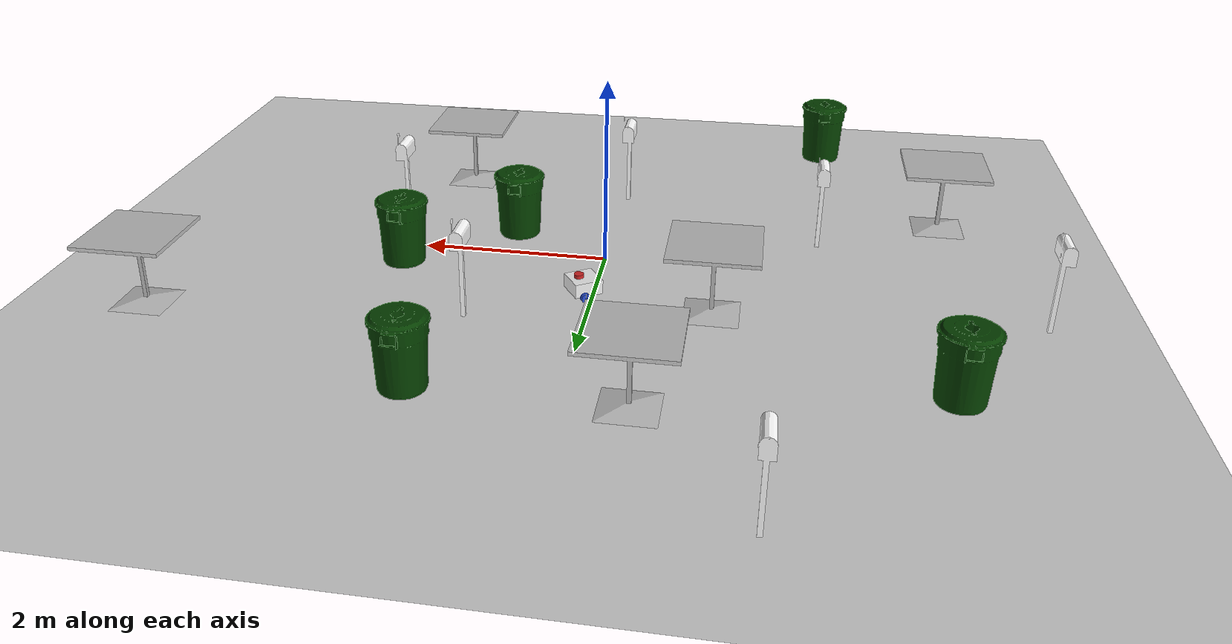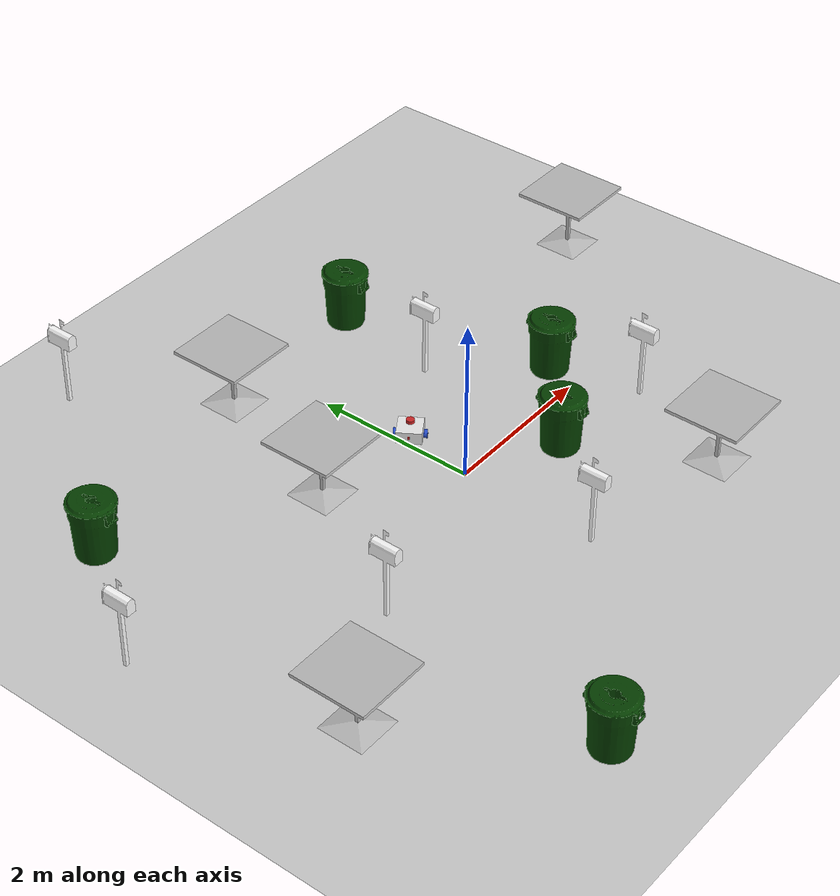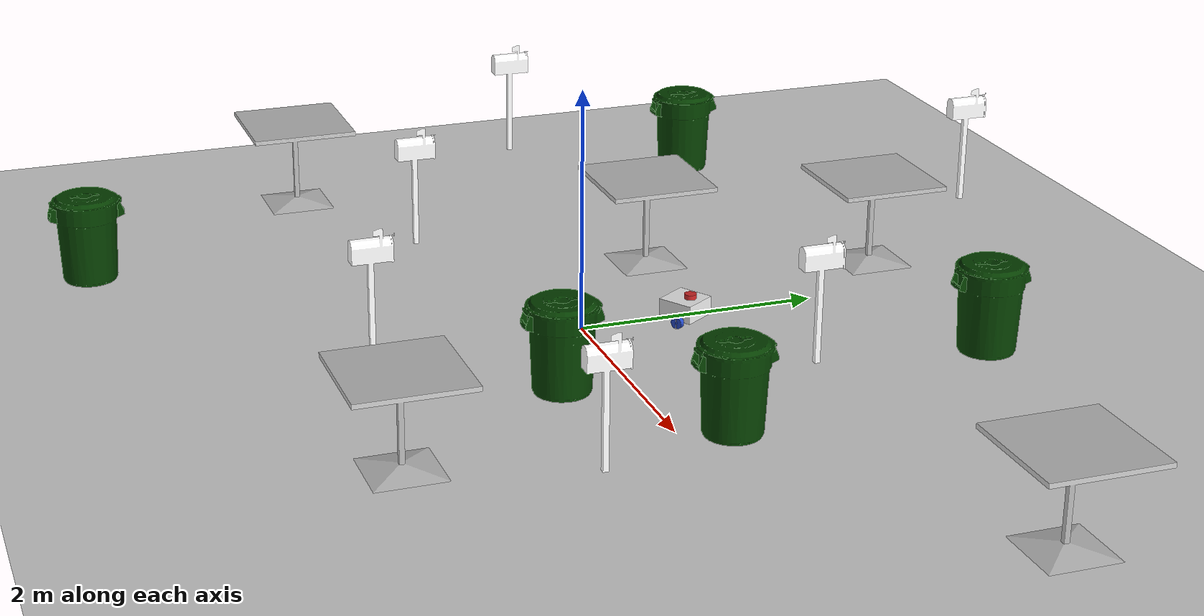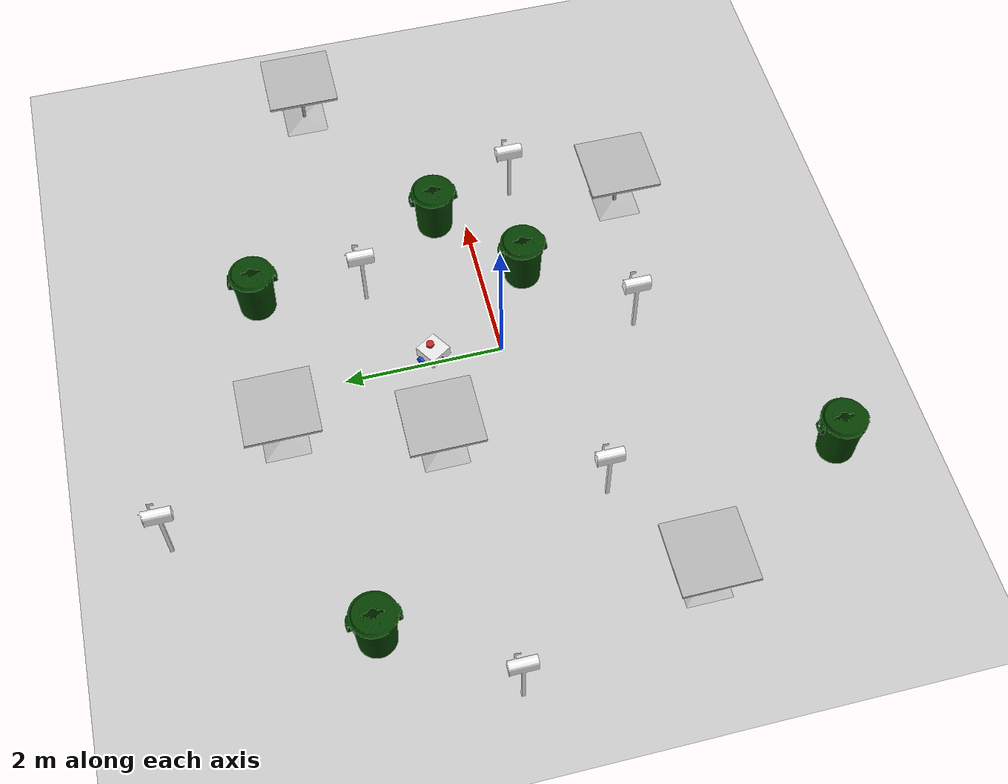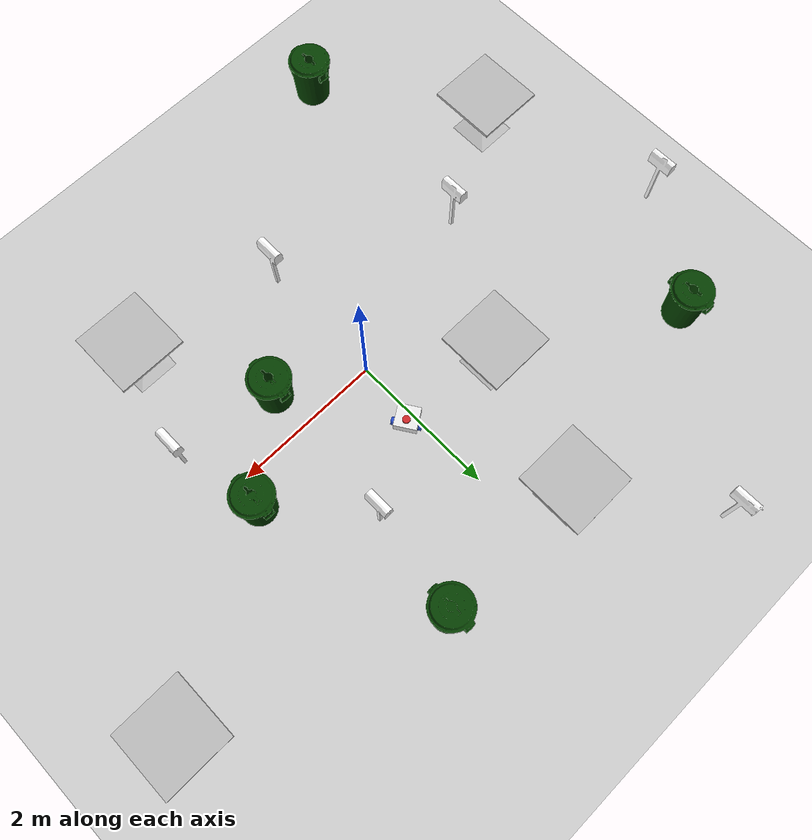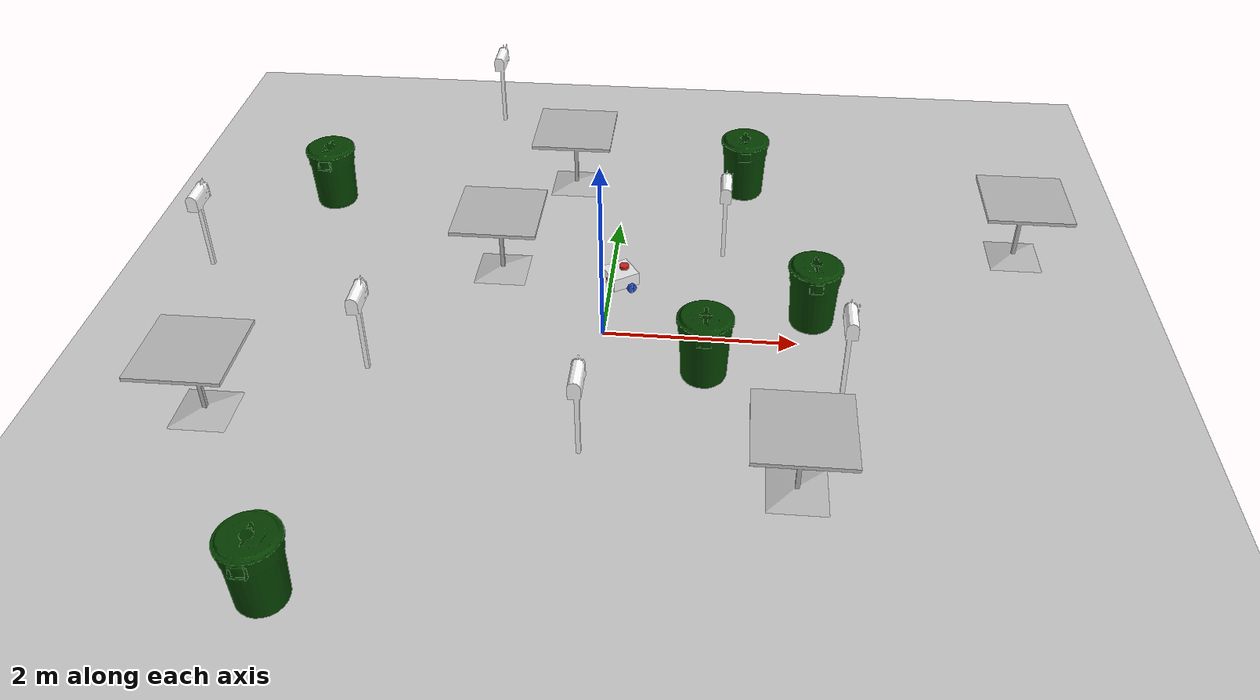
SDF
<sdf version="1.7">
 <world name="default">
  <light name="sun" type="directional">
   <pose>0 0 10 0 -0 0</pose>
   <diffuse>0.8 0.8 0.8 1</diffuse>
   <specular>0.2 0.2 0.2 1</specular>
   <attenuation>
    <range>1000</range>
    <constant>0.9</constant>
    <linear>0.01</linear>
    <quadratic>0.001</quadratic>
   </attenuation>
   <direction>-0.5 0.1 -0.9</direction>
   <spot><inner_angle>0</inner_angle><outer_angle>0</outer_angle><falloff>0</falloff></spot>
  </light>
  <model name="ground_plane">
   <static>1</static>
   <link name="link">
    <collision name="collision">
     <geometry><plane><normal>0 0 1</normal><size>100 100</size></plane></geometry>
     <surface><friction><ode><mu>100</mu><mu2>50</mu2></ode></friction></surface>
    </collision>
    <visual name="visual">
     <cast_shadows>0</cast_shadows>
     <geometry><plane><normal>0 0 1</normal><size>100 100</size></plane></geometry>
     <material>
      <script><uri>file://media/materials/scripts/gazebo.material</uri><name>Gazebo/Grey</name></script>
     </material>
    </visual>
   </link>
  </model>
  <gravity>0 0 -9.8</gravity>
  <magnetic_field>6e-06 2.3e-05 -4.2e-05</magnetic_field>
  <atmosphere type="adiabatic"/>
  <physics type="ode">
   <max_step_size>0.001</max_step_size>
   <real_time_factor>1</real_time_factor>
   <real_time_update_rate>1000</real_time_update_rate>
  </physics>
  <scene><ambient>0.4 0.4 0.4 1</ambient><background>0.7 0.7 0.7 1</background><shadows>1</shadows></scene>
  <audio><device>default</device></audio>
  <spherical_coordinates>
   <surface_model>EARTH_WGS84</surface_model>
   <latitude_deg>0</latitude_deg>
   <longitude_deg>0</longitude_deg>
   <elevation>0</elevation>
   <heading_deg>0</heading_deg>
  </spherical_coordinates>
  <model name="my_bot">
   <link name="base_link">
    <inertial>
     <pose>0.055714 0 0.078571 0 -0 0</pose>
     <mass>0.7</mass>
     <inertia>
      <ixx>0.0064169</ixx>
      <ixy>0</ixy>
      <ixz>0.00118929</ixz>
      <iyy>0.00745405</iyy>
      <iyz>0</iyz>
      <izz>0.00876214</izz>
     </inertia>
    </inertial>
    <collision name="base_link_fixed_joint_lump__chassis_collision">
     <pose>0.05 0 0.075 0 -0 0</pose>
     <geometry><box><size>0.3 0.3 0.15</size></box></geometry>
    </collision>
    <collision name="base_link_fixed_joint_lump__caster_wheel_collision_1">
     <pose>0.14 0 0 0 -0 0</pose>
     <geometry><sphere><radius>0.05</radius></sphere></geometry>
     <surface><friction><ode><mu>0.001</mu><mu2>0.001</mu2></ode></friction></surface>
    </collision>
    <collision name="base_link_fixed_joint_lump__laser_frame_collision_2">
     <pose>0 0 0.175 0 -0 0</pose>
     <geometry><cylinder><length>0.04</length><radius>0.05</radius></cylinder></geometry>
    </collision>
    <visual name="base_link_visual">
     <pose>0 0 0 -1.5708 0 0</pose>
     <geometry><cylinder><length>0.4</length><radius>0.01</radius></cylinder></geometry>
     <material>
      <script><name>Gazebo/Blue</name><uri>file://media/materials/scripts/gazebo.material</uri></script>
     </material>
    </visual>
    <visual name="base_link_fixed_joint_lump__chassis_visual_1">
     <pose>0.05 0 0.075 0 -0 0</pose>
     <geometry><box><size>0.3 0.3 0.15</size></box></geometry>
     <material>
      <script><name>Gazebo/White</name><uri>file://media/materials/scripts/gazebo.material</uri></script>
     </material>
    </visual>
    <visual name="base_link_fixed_joint_lump__camera_link_visual_2">
     <pose>0.205 0 0.08 0 -0 0</pose>
     <geometry><box><size>0.01 0.03 0.03</size></box></geometry>
     <material>
      <script><name>Gazebo/Red</name><uri>file://media/materials/scripts/gazebo.material</uri></script>
     </material>
    </visual>
    <visual name="base_link_fixed_joint_lump__caster_wheel_visual_3">
     <pose>0.14 0 0 0 -0 0</pose>
     <geometry><sphere><radius>0.05</radius></sphere></geometry>
     <material>
      <script><name>Gazebo/Black</name><uri>file://media/materials/scripts/gazebo.material</uri></script>
     </material>
    </visual>
    <visual name="base_link_fixed_joint_lump__laser_frame_visual_4">
     <pose>0 0 0.175 0 -0 0</pose>
     <geometry><cylinder><length>0.04</length><radius>0.05</radius></cylinder></geometry>
     <material>
      <script><name>Gazebo/Red</name><uri>file://media/materials/scripts/gazebo.material</uri></script>
     </material>
    </visual>
    <sensor name="camera" type="camera">
     <visualize>1</visualize>
     <update_rate>10</update_rate>
     <camera>
      <horizontal_fov>1.089</horizontal_fov>
      <image><format>R8G8B8</format><width>640</width><height>480</height></image>
      <clip><near>0.05</near><far>8</far></clip>
     </camera>
     <plugin name="camera_controller" filename="libgazebo_ros_camera.so">
      <frame_name>camera_link_optical</frame_name>
     </plugin>
     <pose>0.205 0 0.08 0 -0 0</pose>
    </sensor>
    <sensor name="laser" type="ray">
     <visualize>1</visualize>
     <update_rate>10</update_rate>
     <ray>
      <scan>
       <horizontal>
        <samples>360</samples>
        <min_angle>0</min_angle>
        <max_angle>6.28319</max_angle>
        <resolution>1</resolution>
       </horizontal>
       <vertical><samples>1</samples><min_angle>0</min_angle><max_angle>0</max_angle></vertical>
      </scan>
      <range><min>0.3</min><max>12</max></range>
     </ray>
     <plugin name="laser_controller" filename="libgazebo_ros_ray_sensor.so">
      <ros><argument>~/out:=scan</argument></ros>
      <output_type>sensor_msgs/LaserScan</output_type>
      <frame_name>laser_frame</frame_name>
     </plugin>
     <pose>0 0 0.175 0 -0 0</pose>
    </sensor>
   </link>
   <joint name="left_wheel_joint" type="revolute">
    <pose relative_to="base_link">0 0.175 0 -1.5708 0 0</pose>
    <parent>base_link</parent>
    <child>left_wheel</child>
    <axis>
     <xyz>0 0 1</xyz>
     <limit><lower>-1e+16</lower><upper>1e+16</upper></limit>
     <dynamics><spring_reference>0</spring_reference><spring_stiffness>0</spring_stiffness></dynamics>
    </axis>
   </joint>
   <link name="left_wheel">
    <pose relative_to="left_wheel_joint">0 0 0 0 -0 0</pose>
    <inertial>
     <mass>0.1</mass>
     <inertia>
      <ixx>7.58333e-05</ixx>
      <ixy>0</ixy>
      <ixz>0</ixz>
      <iyy>7.58333e-05</iyy>
      <iyz>0</iyz>
      <izz>0.000125</izz>
     </inertia>
    </inertial>
    <collision name="left_wheel_collision">
     <geometry><cylinder><length>0.04</length><radius>0.05</radius></cylinder></geometry>
    </collision>
    <visual name="left_wheel_visual">
     <geometry><cylinder><length>0.04</length><radius>0.05</radius></cylinder></geometry>
     <material>
      <script><name>Gazebo/Blue</name><uri>file://media/materials/scripts/gazebo.material</uri></script>
     </material>
    </visual>
    <visual name="left_wheel_fixed_joint_lump__indicator_left_link_visual_1">
     <pose>0 0 0.02 0 0 -1.5708</pose>
     <geometry><box><size>0.1 0.01 0.001</size></box></geometry>
     <material>
      <script><name>Gazebo/White</name><uri>file://media/materials/scripts/gazebo.material</uri></script>
     </material>
    </visual>
   </link>
   <joint name="right_wheel_joint" type="revolute">
    <pose relative_to="base_link">0 -0.175 0 1.5708 -0 0</pose>
    <parent>base_link</parent>
    <child>right_wheel</child>
    <axis>
     <xyz>0 0 -1</xyz>
     <limit><lower>-1e+16</lower><upper>1e+16</upper></limit>
     <dynamics><spring_reference>0</spring_reference><spring_stiffness>0</spring_stiffness></dynamics>
    </axis>
   </joint>
   <link name="right_wheel">
    <pose relative_to="right_wheel_joint">0 0 0 0 -0 0</pose>
    <inertial>
     <mass>0.1</mass>
     <inertia>
      <ixx>7.58333e-05</ixx>
      <ixy>0</ixy>
      <ixz>0</ixz>
      <iyy>7.58333e-05</iyy>
      <iyz>0</iyz>
      <izz>0.000125</izz>
     </inertia>
    </inertial>
    <collision name="right_wheel_collision">
     <geometry><cylinder><length>0.04</length><radius>0.05</radius></cylinder></geometry>
    </collision>
    <visual name="right_wheel_visual">
     <geometry><cylinder><length>0.04</length><radius>0.05</radius></cylinder></geometry>
     <material>
      <script><name>Gazebo/Blue</name><uri>file://media/materials/scripts/gazebo.material</uri></script>
     </material>
    </visual>
    <visual name="right_wheel_fixed_joint_lump__indicator_right_link_visual_1">
     <pose>0 0 0.02 0 -0 1.5708</pose>
     <geometry><box><size>0.1 0.01 0.001</size></box></geometry>
     <material>
      <script><name>Gazebo/White</name><uri>file://media/materials/scripts/gazebo.material</uri></script>
     </material>
    </visual>
   </link>
   <static>0</static>
   <plugin name="gazebo_ros2_control" filename="libgazebo_ros2_control.so">
    <parameters>/home/fiend/Navigation_Bot/dev_ws/install/navigation_bot/share/navigation_bot/config/my_controller.yaml</parameters>
   </plugin>
   <pose>0.143778 0.88285 0.050001 0 4e-06 -2.56824</pose>
  </model>
  <model name="Mailbox">
   <link name="link">
    <collision name="collision">
     <geometry><mesh><uri>model://mailbox/meshes/mailbox.dae</uri></mesh></geometry>
    </collision>
    <visual name="visual">
     <geometry><mesh><uri>model://mailbox/meshes/mailbox.dae</uri></mesh></geometry>
     <material>
      <script>
       <uri>model://mailbox/materials/scripts</uri>
       <uri>model://mailbox/materials/textures</uri>
       <name>Mailbox/Diffuse</name>
      </script>
     </material>
    </visual>
    <inertial>
     <inertia><ixx>1</ixx><ixy>0</ixy><ixz>0</ixz><iyy>1</iyy><iyz>0</iyz><izz>1</izz></inertia>
     <mass>1</mass>
    </inertial>
   </link>
   <pose>-0.037154 -1.71618 0 6e-06 -9e-06 0</pose>
  </model>
  <model name="cafe_table">
   <static>1</static>
   <link name="link">
    <collision name="surface">
     <pose>0 0 0.755 0 -0 0</pose>
     <geometry><box><size>0.913 0.913 0.04</size></box></geometry>
    </collision>
    <collision name="column">
     <pose>0 0 0.37 0 -0 0</pose>
     <geometry><box><size>0.042 0.042 0.74</size></box></geometry>
    </collision>
    <collision name="base">
     <pose>0 0 0.02 0 -0 0</pose>
     <geometry><box><size>0.56 0.56 0.04</size></box></geometry>
    </collision>
    <visual name="visual">
     <geometry><mesh><uri>model://cafe_table/meshes/cafe_table.dae</uri></mesh></geometry>
    </visual>
   </link>
   <pose>1.94857 -2.03682 0 0 -0 0</pose>
  </model>
  <model name="first_2015_trash_can">
   <link name="link">
    <inertial>
     <pose>0 0 0.3683 0 -0 0</pose>
     <mass>4.83076</mass>
     <inertia>
      <ixx>0.281534</ixx>
      <ixy>0</ixy>
      <ixz>0</ixz>
      <iyy>0.281534</iyy>
      <iyz>0</iyz>
      <izz>0.126223</izz>
     </inertia>
    </inertial>
    <visual name="visual">
     <geometry><mesh><uri>model://first_2015_trash_can/meshes/trash_can.dae</uri></mesh></geometry>
    </visual>
    <collision name="collision">
     <geometry><mesh><uri>model://first_2015_trash_can/meshes/trash_can.dae</uri></mesh></geometry>
    </collision>
   </link>
   <pose>2.14804 0.392212 -2e-06 5e-06 1e-05 -0.000951</pose>
  </model>
  <model name="first_2015_trash_can_0">
   <link name="link">
    <inertial>
     <pose>0 0 0.3683 0 -0 0</pose>
     <mass>4.83076</mass>
     <inertia>
      <ixx>0.281534</ixx>
      <ixy>0</ixy>
      <ixz>0</ixz>
      <iyy>0.281534</iyy>
      <iyz>0</iyz>
      <izz>0.126223</izz>
     </inertia>
    </inertial>
    <visual name="visual">
     <geometry><mesh><uri>model://first_2015_trash_can/meshes/trash_can.dae</uri></mesh></geometry>
    </visual>
    <collision name="collision">
     <geometry><mesh><uri>model://first_2015_trash_can/meshes/trash_can.dae</uri></mesh></geometry>
    </collision>
   </link>
   <pose>1.06132 -0.534096 2e-06 2.7e-05 1e-05 -0.001135</pose>
  </model>
  <model name="cafe_table_0">
   <static>1</static>
   <link name="link">
    <collision name="surface">
     <pose>0 0 0.755 0 -0 0</pose>
     <geometry><box><size>0.913 0.913 0.04</size></box></geometry>
    </collision>
    <collision name="column">
     <pose>0 0 0.37 0 -0 0</pose>
     <geometry><box><size>0.042 0.042 0.74</size></box></geometry>
    </collision>
    <collision name="base">
     <pose>0 0 0.02 0 -0 0</pose>
     <geometry><box><size>0.56 0.56 0.04</size></box></geometry>
    </collision>
    <visual name="visual">
     <geometry><mesh><uri>model://cafe_table/meshes/cafe_table.dae</uri></mesh></geometry>
    </visual>
   </link>
   <pose>-1.2155 1.02807 0 0 -0 0</pose>
  </model>
  <model name="Mailbox_0">
   <link name="link">
    <collision name="collision">
     <geometry><mesh><uri>model://mailbox/meshes/mailbox.dae</uri></mesh></geometry>
    </collision>
    <visual name="visual">
     <geometry><mesh><uri>model://mailbox/meshes/mailbox.dae</uri></mesh></geometry>
     <material>
      <script>
       <uri>model://mailbox/materials/scripts</uri>
       <uri>model://mailbox/materials/textures</uri>
       <name>Mailbox/Diffuse</name>
      </script>
     </material>
    </visual>
    <inertial>
     <inertia><ixx>1</ixx><ixy>0</ixy><ixz>0</ixz><iyy>1</iyy><iyz>0</iyz><izz>1</izz></inertia>
     <mass>1</mass>
    </inertial>
   </link>
   <pose>1.19824 1.50583 -9e-06 -3e-06 -7e-06 0</pose>
  </model>
  <model name="Mailbox_1">
   <link name="link">
    <collision name="collision">
     <geometry><mesh><uri>model://mailbox/meshes/mailbox.dae</uri></mesh></geometry>
    </collision>
    <visual name="visual">
     <geometry><mesh><uri>model://mailbox/meshes/mailbox.dae</uri></mesh></geometry>
     <material>
      <script>
       <uri>model://mailbox/materials/scripts</uri>
       <uri>model://mailbox/materials/textures</uri>
       <name>Mailbox/Diffuse</name>
      </script>
     </material>
    </visual>
    <inertial>
     <inertia><ixx>1</ixx><ixy>0</ixy><ixz>0</ixz><iyy>1</iyy><iyz>0</iyz><izz>1</izz></inertia>
     <mass>1</mass>
    </inertial>
   </link>
   <pose>2.41656 -0.694488 -1e-05 8e-06 -1e-05 0</pose>
  </model>
  <model name="cafe_table_1">
   <static>1</static>
   <link name="link">
    <collision name="surface">
     <pose>0 0 0.755 0 -0 0</pose>
     <geometry><box><size>0.913 0.913 0.04</size></box></geometry>
    </collision>
    <collision name="column">
     <pose>0 0 0.37 0 -0 0</pose>
     <geometry><box><size>0.042 0.042 0.74</size></box></geometry>
    </collision>
    <collision name="base">
     <pose>0 0 0.02 0 -0 0</pose>
     <geometry><box><size>0.56 0.56 0.04</size></box></geometry>
    </collision>
    <visual name="visual">
     <geometry><mesh><uri>model://cafe_table/meshes/cafe_table.dae</uri></mesh></geometry>
    </visual>
   </link>
   <pose>-3.6461 -1.47652 0 0 -0 0</pose>
  </model>
  <model name="Mailbox_2">
   <link name="link">
    <collision name="collision">
     <geometry><mesh><uri>model://mailbox/meshes/mailbox.dae</uri></mesh></geometry>
    </collision>
    <visual name="visual">
     <geometry><mesh><uri>model://mailbox/meshes/mailbox.dae</uri></mesh></geometry>
     <material>
      <script>
       <uri>model://mailbox/materials/scripts</uri>
       <uri>model://mailbox/materials/textures</uri>
       <name>Mailbox/Diffuse</name>
      </script>
     </material>
    </visual>
    <inertial>
     <inertia><ixx>1</ixx><ixy>0</ixy><ixz>0</ixz><iyy>1</iyy><iyz>0</iyz><izz>1</izz></inertia>
     <mass>1</mass>
    </inertial>
   </link>
   <pose>-4.45632 0.852368 -1e-05 1e-06 -3e-06 0</pose>
  </model>
  <model name="first_2015_trash_can_1">
   <link name="link">
    <inertial>
     <pose>0 0 0.3683 0 -0 0</pose>
     <mass>4.83076</mass>
     <inertia>
      <ixx>0.281534</ixx>
      <ixy>0</ixy>
      <ixz>0</ixz>
      <iyy>0.281534</iyy>
      <iyz>0</iyz>
      <izz>0.126223</izz>
     </inertia>
    </inertial>
    <visual name="visual">
     <geometry><mesh><uri>model://first_2015_trash_can/meshes/trash_can.dae</uri></mesh></geometry>
    </visual>
    <collision name="collision">
     <geometry><mesh><uri>model://first_2015_trash_can/meshes/trash_can.dae</uri></mesh></geometry>
    </collision>
   </link>
   <pose>-3.44325 2.27266 -1e-06 -8e-06 1.5e-05 -0.000338</pose>
  </model>
  <model name="first_2015_trash_can_2">
   <link name="link">
    <inertial>
     <pose>0 0 0.3683 0 -0 0</pose>
     <mass>4.83076</mass>
     <inertia>
      <ixx>0.281534</ixx>
      <ixy>0</ixy>
      <ixz>0</ixz>
      <iyy>0.281534</iyy>
      <iyz>0</iyz>
      <izz>0.126223</izz>
     </inertia>
    </inertial>
    <visual name="visual">
     <geometry><mesh><uri>model://first_2015_trash_can/meshes/trash_can.dae</uri></mesh></geometry>
    </visual>
    <collision name="collision">
     <geometry><mesh><uri>model://first_2015_trash_can/meshes/trash_can.dae</uri></mesh></geometry>
    </collision>
   </link>
   <pose>-2.36677 -3.56146 -2e-06 -6e-06 1.1e-05 -0.00048</pose>
  </model>
  <model name="first_2015_trash_can_3">
   <link name="link">
    <inertial>
     <pose>0 0 0.3683 0 -0 0</pose>
     <mass>4.83076</mass>
     <inertia>
      <ixx>0.281534</ixx>
      <ixy>0</ixy>
      <ixz>0</ixz>
      <iyy>0.281534</iyy>
      <iyz>0</iyz>
      <izz>0.126223</izz>
     </inertia>
    </inertial>
    <visual name="visual">
     <geometry><mesh><uri>model://first_2015_trash_can/meshes/trash_can.dae</uri></mesh></geometry>
    </visual>
    <collision name="collision">
     <geometry><mesh><uri>model://first_2015_trash_can/meshes/trash_can.dae</uri></mesh></geometry>
    </collision>
   </link>
   <pose>1.40273 2.87493 -4e-06 1.3e-05 1.8e-05 -0.0002</pose>
  </model>
  <model name="Mailbox_3">
   <link name="link">
    <collision name="collision">
     <geometry><mesh><uri>model://mailbox/meshes/mailbox.dae</uri></mesh></geometry>
    </collision>
    <visual name="visual">
     <geometry><mesh><uri>model://mailbox/meshes/mailbox.dae</uri></mesh></geometry>
     <material>
      <script>
       <uri>model://mailbox/materials/scripts</uri>
       <uri>model://mailbox/materials/textures</uri>
       <name>Mailbox/Diffuse</name>
      </script>
     </material>
    </visual>
    <inertial>
     <inertia><ixx>1</ixx><ixy>0</ixy><ixz>0</ixz><iyy>1</iyy><iyz>0</iyz><izz>1</izz></inertia>
     <mass>1</mass>
    </inertial>
   </link>
   <pose>-1.77684 4.37251 -0 -8e-06 -0 0</pose>
  </model>
  <model name="cafe_table_2">
   <static>1</static>
   <link name="link">
    <collision name="surface">
     <pose>0 0 0.755 0 -0 0</pose>
     <geometry><box><size>0.913 0.913 0.04</size></box></geometry>
    </collision>
    <collision name="column">
     <pose>0 0 0.37 0 -0 0</pose>
     <geometry><box><size>0.042 0.042 0.74</size></box></geometry>
    </collision>
    <collision name="base">
     <pose>0 0 0.02 0 -0 0</pose>
     <geometry><box><size>0.56 0.56 0.04</size></box></geometry>
    </collision>
    <visual name="visual">
     <geometry><mesh><uri>model://cafe_table/meshes/cafe_table.dae</uri></mesh></geometry>
    </visual>
   </link>
   <pose>-0.621967 2.85988 0 0 -0 0</pose>
  </model>
  <model name="cafe_table_3">
   <static>1</static>
   <link name="link">
    <collision name="surface">
     <pose>0 0 0.755 0 -0 0</pose>
     <geometry><box><size>0.913 0.913 0.04</size></box></geometry>
    </collision>
    <collision name="column">
     <pose>0 0 0.37 0 -0 0</pose>
     <geometry><box><size>0.042 0.042 0.74</size></box></geometry>
    </collision>
    <collision name="base">
     <pose>0 0 0.02 0 -0 0</pose>
     <geometry><box><size>0.56 0.56 0.04</size></box></geometry>
    </collision>
    <visual name="visual">
     <geometry><mesh><uri>model://cafe_table/meshes/cafe_table.dae</uri></mesh></geometry>
    </visual>
   </link>
   <pose>4.4395 1.75616 0 0 -0 0</pose>
  </model>
  <model name="Mailbox_4">
   <link name="link">
    <collision name="collision">
     <geometry><mesh><uri>model://mailbox/meshes/mailbox.dae</uri></mesh></geometry>
    </collision>
    <visual name="visual">
     <geometry><mesh><uri>model://mailbox/meshes/mailbox.dae</uri></mesh></geometry>
     <material>
      <script>
       <uri>model://mailbox/materials/scripts</uri>
       <uri>model://mailbox/materials/textures</uri>
       <name>Mailbox/Diffuse</name>
      </script>
     </material>
    </visual>
    <inertial>
     <inertia><ixx>1</ixx><ixy>0</ixy><ixz>0</ixz><iyy>1</iyy><iyz>0</iyz><izz>1</izz></inertia>
     <mass>1</mass>
    </inertial>
   </link>
   <pose>-2.27583 -0.72766 -9e-06 9e-06 -9e-06 0</pose>
  </model>
 </world>
</sdf>
